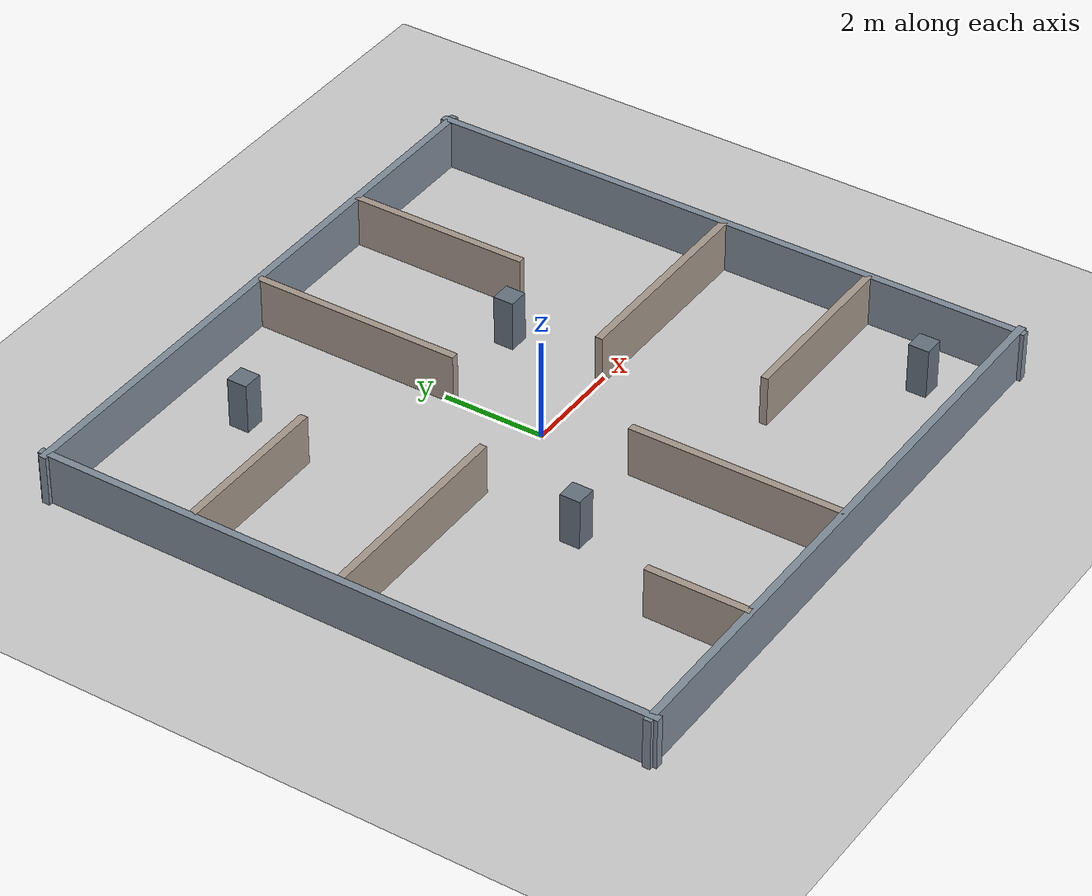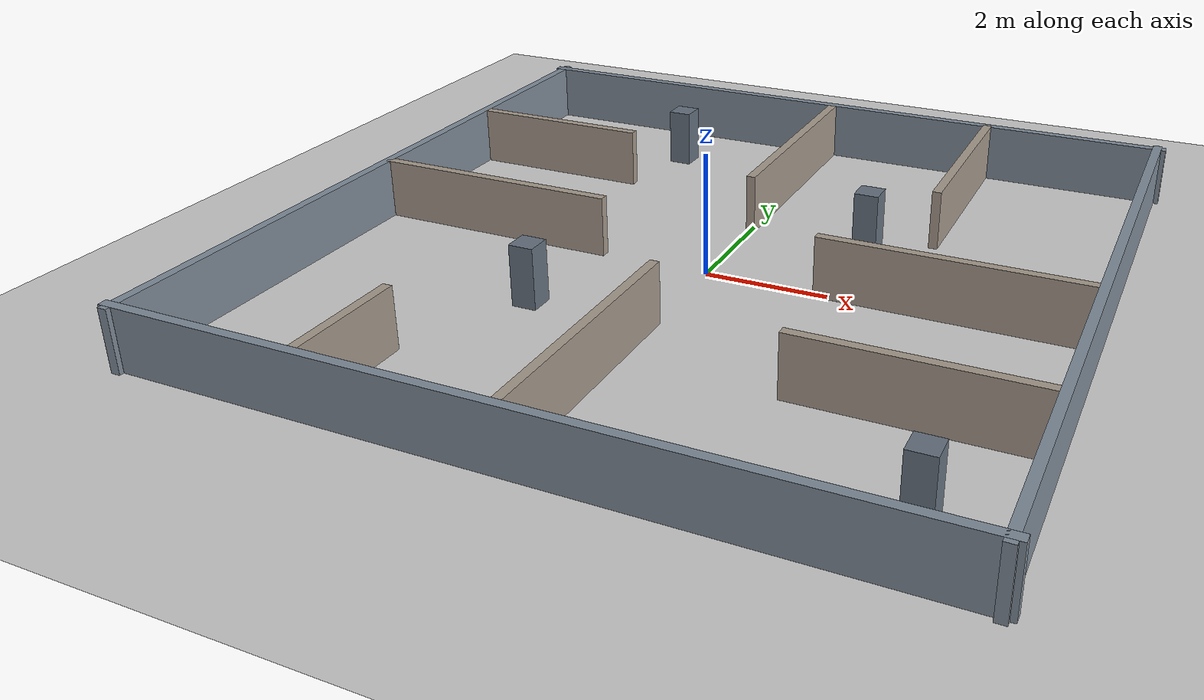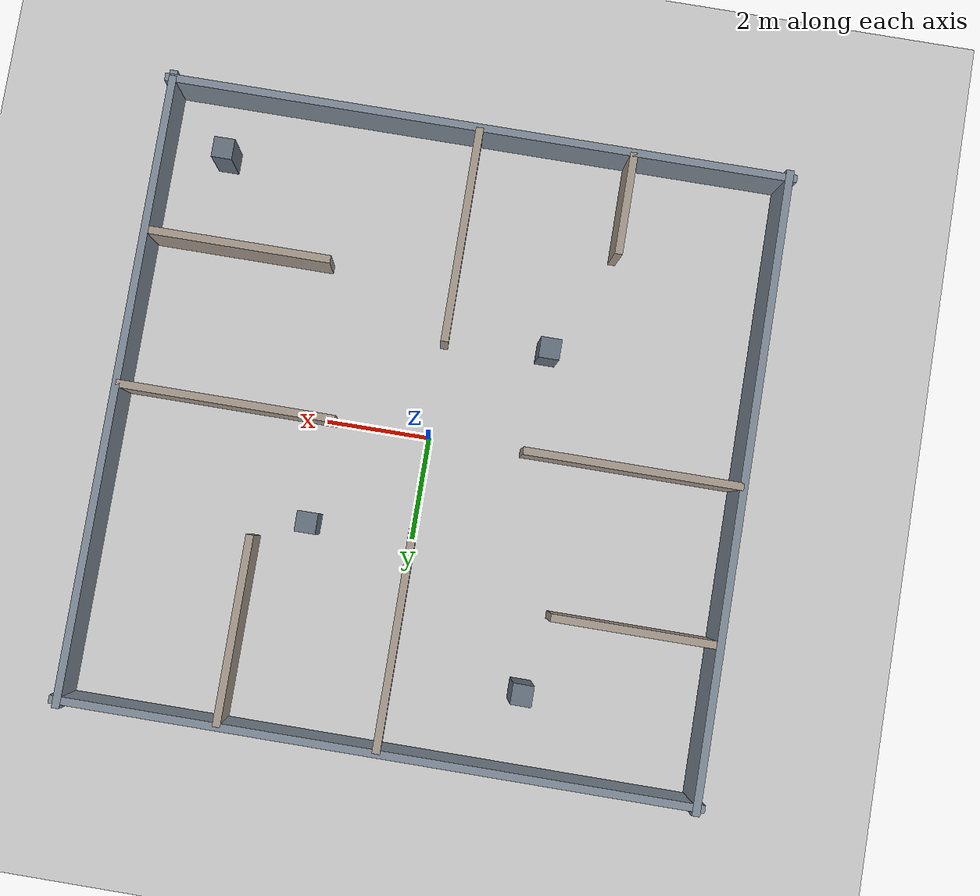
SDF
<?xml version="1.0" ?>
<sdf version="1.6">
  <world name="enclosed_world">

    <physics type="ode">
      <max_step_size>0.001</max_step_size>
      <real_time_factor>1.0</real_time_factor>
      <real_time_update_rate>1000</real_time_update_rate>
    </physics>

    <scene>
      <ambient>0.5 0.5 0.5 1</ambient>
      <background>0.75 0.8 0.85 1</background>
      <shadows>false</shadows>
    </scene>

    <light name="sun" type="directional">
      <cast_shadows>false</cast_shadows>
      <pose>0 0 12 0 0 0</pose>
      <diffuse>0.85 0.85 0.85 1</diffuse>
      <specular>0.2 0.2 0.2 1</specular>
      <attenuation>
        <range>1000</range>
        <constant>0.9</constant>
        <linear>0.01</linear>
        <quadratic>0.001</quadratic>
      </attenuation>
      <direction>-0.4 0.3 -0.9</direction>
    </light>

    <model name="ground_plane">
      <static>true</static>
      <link name="link">
        <collision name="collision">
          <geometry>
            <plane><normal>0 0 1</normal><size>60 60</size></plane>
          </geometry>
          <surface>
            <friction><ode><mu>100</mu><mu2>50</mu2></ode></friction>
          </surface>
        </collision>
        <visual name="visual">
          <cast_shadows>false</cast_shadows>
          <geometry>
            <plane><normal>0 0 1</normal><size>60 60</size></plane>
          </geometry>
          <material>
            <ambient>0.75 0.75 0.75 1</ambient>
            <diffuse>0.8 0.8 0.8 1</diffuse>
          </material>
        </visual>
      </link>
    </model>

    <model name="arena">
      <static>true</static>

      <!-- ================= outer boundary ================= -->
      <link name="wall_north">
        <pose>0 6 0.5 0 0 0</pose>
        <collision name="c"><geometry><box><size>12.3 0.15 1.0</size></box></geometry></collision>
        <visual name="v"><geometry><box><size>12.3 0.15 1.0</size></box></geometry>
          <material><ambient>0.4 0.45 0.5 1</ambient><diffuse>0.5 0.55 0.6 1</diffuse></material></visual>
      </link>

      <link name="wall_south">
        <pose>0 -6 0.5 0 0 0</pose>
        <collision name="c"><geometry><box><size>12.3 0.15 1.0</size></box></geometry></collision>
        <visual name="v"><geometry><box><size>12.3 0.15 1.0</size></box></geometry>
          <material><ambient>0.4 0.45 0.5 1</ambient><diffuse>0.5 0.55 0.6 1</diffuse></material></visual>
      </link>

      <link name="wall_east">
        <pose>6 0 0.5 0 0 0</pose>
        <collision name="c"><geometry><box><size>0.15 12.3 1.0</size></box></geometry></collision>
        <visual name="v"><geometry><box><size>0.15 12.3 1.0</size></box></geometry>
          <material><ambient>0.4 0.45 0.5 1</ambient><diffuse>0.5 0.55 0.6 1</diffuse></material></visual>
      </link>

      <link name="wall_west">
        <pose>-6 0 0.5 0 0 0</pose>
        <collision name="c"><geometry><box><size>0.15 12.3 1.0</size></box></geometry></collision>
        <visual name="v"><geometry><box><size>0.15 12.3 1.0</size></box></geometry>
          <material><ambient>0.4 0.45 0.5 1</ambient><diffuse>0.5 0.55 0.6 1</diffuse></material></visual>
      </link>

      <!-- ============ internal cross with doorways ============ -->
      <link name="wall_v_south">
        <pose>0 -3.9 0.5 0 0 0</pose>
        <collision name="c"><geometry><box><size>0.15 4.2 1.0</size></box></geometry></collision>
        <visual name="v"><geometry><box><size>0.15 4.2 1.0</size></box></geometry>
          <material><ambient>0.55 0.5 0.45 1</ambient><diffuse>0.65 0.6 0.55 1</diffuse></material></visual>
      </link>

      <link name="wall_v_north">
        <pose>0 3.9 0.5 0 0 0</pose>
        <collision name="c"><geometry><box><size>0.15 4.2 1.0</size></box></geometry></collision>
        <visual name="v"><geometry><box><size>0.15 4.2 1.0</size></box></geometry>
          <material><ambient>0.55 0.5 0.45 1</ambient><diffuse>0.65 0.6 0.55 1</diffuse></material></visual>
      </link>

      <link name="wall_h_west">
        <pose>-3.9 0 0.5 0 0 0</pose>
        <collision name="c"><geometry><box><size>4.2 0.15 1.0</size></box></geometry></collision>
        <visual name="v"><geometry><box><size>4.2 0.15 1.0</size></box></geometry>
          <material><ambient>0.55 0.5 0.45 1</ambient><diffuse>0.65 0.6 0.55 1</diffuse></material></visual>
      </link>

      <link name="wall_h_east">
        <pose>3.9 0 0.5 0 0 0</pose>
        <collision name="c"><geometry><box><size>4.2 0.15 1.0</size></box></geometry></collision>
        <visual name="v"><geometry><box><size>4.2 0.15 1.0</size></box></geometry>
          <material><ambient>0.55 0.5 0.45 1</ambient><diffuse>0.65 0.6 0.55 1</diffuse></material></visual>
      </link>

      <!-- ================= room dividers ================= -->
      <link name="room_nw">
        <pose>-4.4 3.0 0.5 0 0 0</pose>
        <collision name="c"><geometry><box><size>3.2 0.15 1.0</size></box></geometry></collision>
        <visual name="v"><geometry><box><size>3.2 0.15 1.0</size></box></geometry>
          <material><ambient>0.55 0.5 0.45 1</ambient><diffuse>0.65 0.6 0.55 1</diffuse></material></visual>
      </link>

      <link name="room_sw">
        <pose>-3.0 -5.0 0.5 0 0 0</pose>
        <collision name="c"><geometry><box><size>0.15 2.0 1.0</size></box></geometry></collision>
        <visual name="v"><geometry><box><size>0.15 2.0 1.0</size></box></geometry>
          <material><ambient>0.55 0.5 0.45 1</ambient><diffuse>0.65 0.6 0.55 1</diffuse></material></visual>
      </link>

      <link name="room_se">
        <pose>4.2 -3.0 0.5 0 0 0</pose>
        <collision name="c"><geometry><box><size>3.6 0.15 1.0</size></box></geometry></collision>
        <visual name="v"><geometry><box><size>3.6 0.15 1.0</size></box></geometry>
          <material><ambient>0.55 0.5 0.45 1</ambient><diffuse>0.65 0.6 0.55 1</diffuse></material></visual>
      </link>

      <link name="room_ne">
        <pose>3.0 4.2 0.5 0 0 0</pose>
        <collision name="c"><geometry><box><size>0.15 3.6 1.0</size></box></geometry></collision>
        <visual name="v"><geometry><box><size>0.15 3.6 1.0</size></box></geometry>
          <material><ambient>0.55 0.5 0.45 1</ambient><diffuse>0.65 0.6 0.55 1</diffuse></material></visual>
      </link>

      <!-- ================= pillars ================= -->
      <link name="pillar_1">
        <pose>-2.0 -2.0 0.5 0 0 0</pose>
        <collision name="c"><geometry><box><size>0.4 0.4 1.0</size></box></geometry></collision>
        <visual name="v"><geometry><box><size>0.4 0.4 1.0</size></box></geometry>
          <material><ambient>0.3 0.35 0.4 1</ambient><diffuse>0.4 0.45 0.5 1</diffuse></material></visual>
      </link>

      <link name="pillar_2">
        <pose>2.0 2.0 0.5 0 0 0</pose>
        <collision name="c"><geometry><box><size>0.4 0.4 1.0</size></box></geometry></collision>
        <visual name="v"><geometry><box><size>0.4 0.4 1.0</size></box></geometry>
          <material><ambient>0.3 0.35 0.4 1</ambient><diffuse>0.4 0.45 0.5 1</diffuse></material></visual>
      </link>

      <link name="pillar_3">
        <pose>-2.5 4.5 0.5 0 0 0</pose>
        <collision name="c"><geometry><box><size>0.4 0.4 1.0</size></box></geometry></collision>
        <visual name="v"><geometry><box><size>0.4 0.4 1.0</size></box></geometry>
          <material><ambient>0.3 0.35 0.4 1</ambient><diffuse>0.4 0.45 0.5 1</diffuse></material></visual>
      </link>

      <link name="pillar_4">
        <pose>4.8 -4.8 0.5 0 0 0</pose>
        <collision name="c"><geometry><box><size>0.4 0.4 1.0</size></box></geometry></collision>
        <visual name="v"><geometry><box><size>0.4 0.4 1.0</size></box></geometry>
          <material><ambient>0.3 0.35 0.4 1</ambient><diffuse>0.4 0.45 0.5 1</diffuse></material></visual>
      </link>

    </model>

    <gui fullscreen="0">
      <camera name="user_camera">
        <pose>0 -18 16 0 0.75 1.5708</pose>
      </camera>
    </gui>

  </world>
</sdf>
